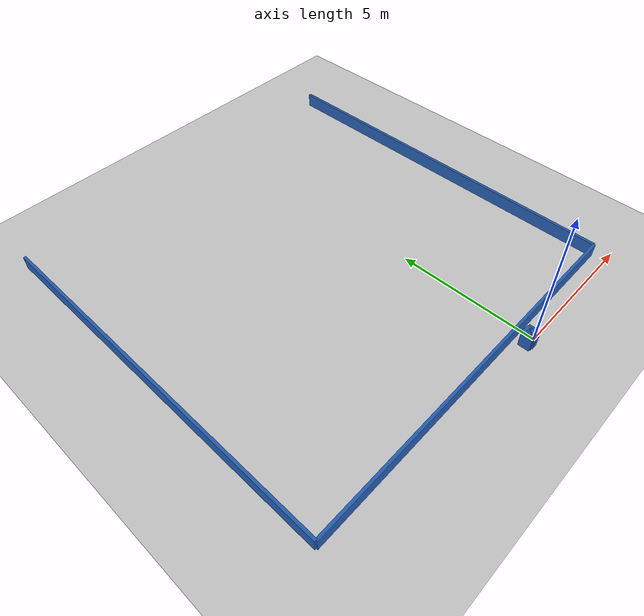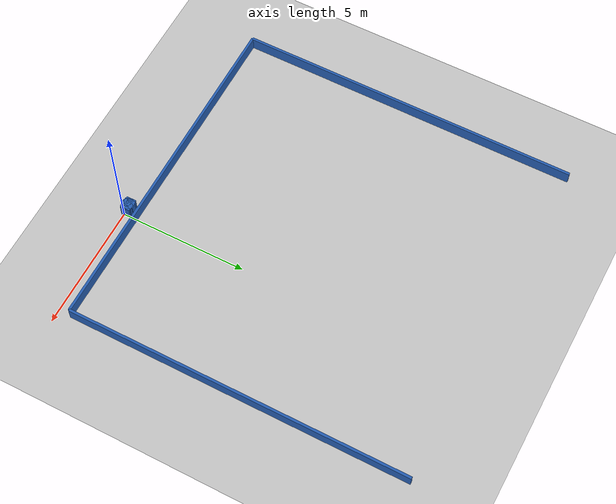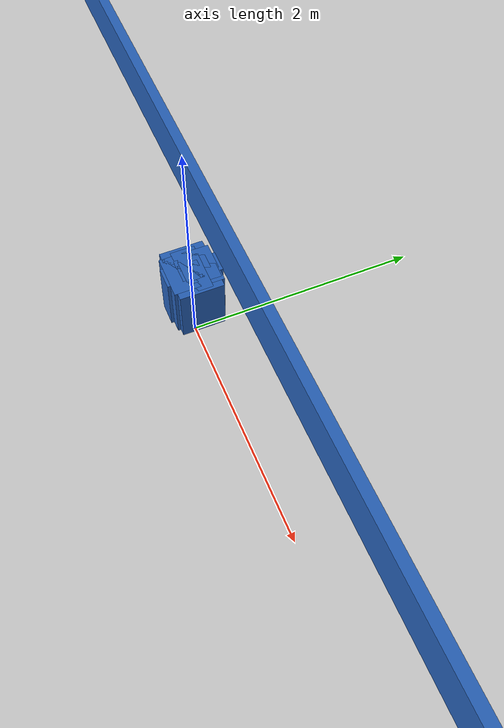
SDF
<?xml version="1.0" ?>
    <sdf version="1.5">
      <world name="default">
        <!-- A global light source -->
        <include>
          <uri>model://sun</uri>
        </include>
        <!-- A ground plane -->
        <include>
          <uri>model://ground_plane</uri>
        </include>

    <model name='libopen_space_final_T2B_123_20'>
      <static>1</static>
      <pose frame=''>-0.225000 0.075000 0.000000 0.000000 0.000000 0.000000</pose>
      <link name='link'>
        <inertial>
          <mass>1</mass>
          <inertia>
            <ixx>0.145833</ixx>
            <ixy>0</ixy>
            <ixz>0</ixz>
            <iyy>0.145833</iyy>
            <iyz>0</iyz>
            <izz>0.125</izz>
          </inertia>
        </inertial>
        <collision name='collision'>
          <geometry>
            <box>
              <size>0.19 0.48 1</size>
            </box>
          </geometry>
          <max_contacts>10</max_contacts>
          <surface>
            <contact>
              <ode/>
            </contact>
            <bounce/>
            <friction>
              <torsional>
                <ode/>
              </torsional>
              <ode/>
            </friction>
          </surface>
        </collision>
        <visual name='visual'>
          <geometry>
            <box>
              <size>0.19 0.48 1</size>
            </box>
          </geometry>
	    <material>
              <ambient>0.152000 0.379000 0.720000 1</ambient>
	      <diffuse>0.152000 0.379000 0.720000 1</diffuse>
          </material>
          <material>
            <script>
              <name>Gazebo/Grey</name>
              <uri>file://media/materials/scripts/gazebo.material</uri>
            </script>
          </material>
        </visual>
        <self_collide>0</self_collide>
        <kinematic>0</kinematic>
        <gravity>1</gravity>
      </link>
      <plugin name='libopen_space_final_T2B_123_20' filename='libopen_space_final_T2B_123_20.so'/>
    </model>

    <model name='libopen_space_final_T2B_105_8'>
      <static>1</static>
      <pose frame=''>-0.225000 0.075000 0.000000 0.000000 0.000000 0.000000</pose>
      <link name='link'>
        <inertial>
          <mass>1</mass>
          <inertia>
            <ixx>0.145833</ixx>
            <ixy>0</ixy>
            <ixz>0</ixz>
            <iyy>0.145833</iyy>
            <iyz>0</iyz>
            <izz>0.125</izz>
          </inertia>
        </inertial>
        <collision name='collision'>
          <geometry>
            <box>
              <size>0.50 0.38 1</size>
            </box>
          </geometry>
          <max_contacts>10</max_contacts>
          <surface>
            <contact>
              <ode/>
            </contact>
            <bounce/>
            <friction>
              <torsional>
                <ode/>
              </torsional>
              <ode/>
            </friction>
          </surface>
        </collision>
        <visual name='visual'>
          <geometry>
            <box>
              <size>0.50 0.38 1</size>
            </box>
          </geometry>
	    <material>
              <ambient>0.152000 0.379000 0.720000 1</ambient>
	      <diffuse>0.152000 0.379000 0.720000 1</diffuse>
          </material>
          <material>
            <script>
              <name>Gazebo/Grey</name>
              <uri>file://media/materials/scripts/gazebo.material</uri>
            </script>
          </material>
        </visual>
        <self_collide>0</self_collide>
        <kinematic>0</kinematic>
        <gravity>1</gravity>
      </link>
      <plugin name='libopen_space_final_T2B_105_8' filename='libopen_space_final_T2B_105_8.so'/>
    </model>

    <model name='libopen_space_final_T2B_118_43'>
      <static>1</static>
      <pose frame=''>-0.225000 0.075000 0.000000 0.000000 0.000000 0.000000</pose>
      <link name='link'>
        <inertial>
          <mass>1</mass>
          <inertia>
            <ixx>0.145833</ixx>
            <ixy>0</ixy>
            <ixz>0</ixz>
            <iyy>0.145833</iyy>
            <iyz>0</iyz>
            <izz>0.125</izz>
          </inertia>
        </inertial>
        <collision name='collision'>
          <geometry>
            <box>
              <size>0.16 0.15 1</size>
            </box>
          </geometry>
          <max_contacts>10</max_contacts>
          <surface>
            <contact>
              <ode/>
            </contact>
            <bounce/>
            <friction>
              <torsional>
                <ode/>
              </torsional>
              <ode/>
            </friction>
          </surface>
        </collision>
        <visual name='visual'>
          <geometry>
            <box>
              <size>0.16 0.15 1</size>
            </box>
          </geometry>
	    <material>
              <ambient>0.152000 0.379000 0.720000 1</ambient>
	      <diffuse>0.152000 0.379000 0.720000 1</diffuse>
          </material>
          <material>
            <script>
              <name>Gazebo/Grey</name>
              <uri>file://media/materials/scripts/gazebo.material</uri>
            </script>
          </material>
        </visual>
        <self_collide>0</self_collide>
        <kinematic>0</kinematic>
        <gravity>1</gravity>
      </link>
      <plugin name='libopen_space_final_T2B_118_43' filename='libopen_space_final_T2B_118_43.so'/>
    </model>

    <model name='libopen_space_final_T2B_83_61'>
      <static>1</static>
      <pose frame=''>-0.225000 0.075000 0.000000 0.000000 0.000000 0.000000</pose>
      <link name='link'>
        <inertial>
          <mass>1</mass>
          <inertia>
            <ixx>0.145833</ixx>
            <ixy>0</ixy>
            <ixz>0</ixz>
            <iyy>0.145833</iyy>
            <iyz>0</iyz>
            <izz>0.125</izz>
          </inertia>
        </inertial>
        <collision name='collision'>
          <geometry>
            <box>
              <size>0.45 0.21 1</size>
            </box>
          </geometry>
          <max_contacts>10</max_contacts>
          <surface>
            <contact>
              <ode/>
            </contact>
            <bounce/>
            <friction>
              <torsional>
                <ode/>
              </torsional>
              <ode/>
            </friction>
          </surface>
        </collision>
        <visual name='visual'>
          <geometry>
            <box>
              <size>0.45 0.21 1</size>
            </box>
          </geometry>
	    <material>
              <ambient>0.152000 0.379000 0.720000 1</ambient>
	      <diffuse>0.152000 0.379000 0.720000 1</diffuse>
          </material>
          <material>
            <script>
              <name>Gazebo/Grey</name>
              <uri>file://media/materials/scripts/gazebo.material</uri>
            </script>
          </material>
        </visual>
        <self_collide>0</self_collide>
        <kinematic>0</kinematic>
        <gravity>1</gravity>
      </link>
      <plugin name='libopen_space_final_T2B_83_61' filename='libopen_space_final_T2B_83_61.so'/>
    </model>

    <model name='libopen_space_final_T2B_81_89'>
      <static>1</static>
      <pose frame=''>-0.225000 0.075000 0.000000 0.000000 0.000000 0.000000</pose>
      <link name='link'>
        <inertial>
          <mass>1</mass>
          <inertia>
            <ixx>0.145833</ixx>
            <ixy>0</ixy>
            <ixz>0</ixz>
            <iyy>0.145833</iyy>
            <iyz>0</iyz>
            <izz>0.125</izz>
          </inertia>
        </inertial>
        <collision name='collision'>
          <geometry>
            <box>
              <size>0.18 0.21 1</size>
            </box>
          </geometry>
          <max_contacts>10</max_contacts>
          <surface>
            <contact>
              <ode/>
            </contact>
            <bounce/>
            <friction>
              <torsional>
                <ode/>
              </torsional>
              <ode/>
            </friction>
          </surface>
        </collision>
        <visual name='visual'>
          <geometry>
            <box>
              <size>0.18 0.21 1</size>
            </box>
          </geometry>
	    <material>
              <ambient>0.152000 0.379000 0.720000 1</ambient>
	      <diffuse>0.152000 0.379000 0.720000 1</diffuse>
          </material>
          <material>
            <script>
              <name>Gazebo/Grey</name>
              <uri>file://media/materials/scripts/gazebo.material</uri>
            </script>
          </material>
        </visual>
        <self_collide>0</self_collide>
        <kinematic>0</kinematic>
        <gravity>1</gravity>
      </link>
      <plugin name='libopen_space_final_T2B_81_89' filename='libopen_space_final_T2B_81_89.so'/>
    </model>

    <model name='libopen_space_final_T2B_94_31'>
      <static>1</static>
      <pose frame=''>-0.225000 0.075000 0.000000 0.000000 0.000000 0.000000</pose>
      <link name='link'>
        <inertial>
          <mass>1</mass>
          <inertia>
            <ixx>0.145833</ixx>
            <ixy>0</ixy>
            <ixz>0</ixz>
            <iyy>0.145833</iyy>
            <iyz>0</iyz>
            <izz>0.125</izz>
          </inertia>
        </inertial>
        <collision name='collision'>
          <geometry>
            <box>
              <size>0.38 0.43 1</size>
            </box>
          </geometry>
          <max_contacts>10</max_contacts>
          <surface>
            <contact>
              <ode/>
            </contact>
            <bounce/>
            <friction>
              <torsional>
                <ode/>
              </torsional>
              <ode/>
            </friction>
          </surface>
        </collision>
        <visual name='visual'>
          <geometry>
            <box>
              <size>0.38 0.43 1</size>
            </box>
          </geometry>
	    <material>
              <ambient>0.152000 0.379000 0.720000 1</ambient>
	      <diffuse>0.152000 0.379000 0.720000 1</diffuse>
          </material>
          <material>
            <script>
              <name>Gazebo/Grey</name>
              <uri>file://media/materials/scripts/gazebo.material</uri>
            </script>
          </material>
        </visual>
        <self_collide>0</self_collide>
        <kinematic>0</kinematic>
        <gravity>1</gravity>
      </link>
      <plugin name='libopen_space_final_T2B_94_31' filename='libopen_space_final_T2B_94_31.so'/>
    </model>

    <model name='libopen_space_final_T2B_148_40'>
      <static>1</static>
      <pose frame=''>-0.225000 0.075000 0.000000 0.000000 0.000000 0.000000</pose>
      <link name='link'>
        <inertial>
          <mass>1</mass>
          <inertia>
            <ixx>0.145833</ixx>
            <ixy>0</ixy>
            <ixz>0</ixz>
            <iyy>0.145833</iyy>
            <iyz>0</iyz>
            <izz>0.125</izz>
          </inertia>
        </inertial>
        <collision name='collision'>
          <geometry>
            <box>
              <size>0.28 0.31 1</size>
            </box>
          </geometry>
          <max_contacts>10</max_contacts>
          <surface>
            <contact>
              <ode/>
            </contact>
            <bounce/>
            <friction>
              <torsional>
                <ode/>
              </torsional>
              <ode/>
            </friction>
          </surface>
        </collision>
        <visual name='visual'>
          <geometry>
            <box>
              <size>0.28 0.31 1</size>
            </box>
          </geometry>
	    <material>
              <ambient>0.152000 0.379000 0.720000 1</ambient>
	      <diffuse>0.152000 0.379000 0.720000 1</diffuse>
          </material>
          <material>
            <script>
              <name>Gazebo/Grey</name>
              <uri>file://media/materials/scripts/gazebo.material</uri>
            </script>
          </material>
        </visual>
        <self_collide>0</self_collide>
        <kinematic>0</kinematic>
        <gravity>1</gravity>
      </link>
      <plugin name='libopen_space_final_T2B_148_40' filename='libopen_space_final_T2B_148_40.so'/>
    </model>

    <model name='libopen_space_final_T2B_67_47'>
      <static>1</static>
      <pose frame=''>-0.225000 0.075000 0.000000 0.000000 0.000000 0.000000</pose>
      <link name='link'>
        <inertial>
          <mass>1</mass>
          <inertia>
            <ixx>0.145833</ixx>
            <ixy>0</ixy>
            <ixz>0</ixz>
            <iyy>0.145833</iyy>
            <iyz>0</iyz>
            <izz>0.125</izz>
          </inertia>
        </inertial>
        <collision name='collision'>
          <geometry>
            <box>
              <size>0.27 0.22 1</size>
            </box>
          </geometry>
          <max_contacts>10</max_contacts>
          <surface>
            <contact>
              <ode/>
            </contact>
            <bounce/>
            <friction>
              <torsional>
                <ode/>
              </torsional>
              <ode/>
            </friction>
          </surface>
        </collision>
        <visual name='visual'>
          <geometry>
            <box>
              <size>0.27 0.22 1</size>
            </box>
          </geometry>
	    <material>
              <ambient>0.152000 0.379000 0.720000 1</ambient>
	      <diffuse>0.152000 0.379000 0.720000 1</diffuse>
          </material>
          <material>
            <script>
              <name>Gazebo/Grey</name>
              <uri>file://media/materials/scripts/gazebo.material</uri>
            </script>
          </material>
        </visual>
        <self_collide>0</self_collide>
        <kinematic>0</kinematic>
        <gravity>1</gravity>
      </link>
      <plugin name='libopen_space_final_T2B_67_47' filename='libopen_space_final_T2B_67_47.so'/>
    </model>

    <model name='libopen_space_final_T2B_64_52'>
      <static>1</static>
      <pose frame=''>-0.225000 0.075000 0.000000 0.000000 0.000000 0.000000</pose>
      <link name='link'>
        <inertial>
          <mass>1</mass>
          <inertia>
            <ixx>0.145833</ixx>
            <ixy>0</ixy>
            <ixz>0</ixz>
            <iyy>0.145833</iyy>
            <iyz>0</iyz>
            <izz>0.125</izz>
          </inertia>
        </inertial>
        <collision name='collision'>
          <geometry>
            <box>
              <size>0.31 0.41 1</size>
            </box>
          </geometry>
          <max_contacts>10</max_contacts>
          <surface>
            <contact>
              <ode/>
            </contact>
            <bounce/>
            <friction>
              <torsional>
                <ode/>
              </torsional>
              <ode/>
            </friction>
          </surface>
        </collision>
        <visual name='visual'>
          <geometry>
            <box>
              <size>0.31 0.41 1</size>
            </box>
          </geometry>
	    <material>
              <ambient>0.152000 0.379000 0.720000 1</ambient>
	      <diffuse>0.152000 0.379000 0.720000 1</diffuse>
          </material>
          <material>
            <script>
              <name>Gazebo/Grey</name>
              <uri>file://media/materials/scripts/gazebo.material</uri>
            </script>
          </material>
        </visual>
        <self_collide>0</self_collide>
        <kinematic>0</kinematic>
        <gravity>1</gravity>
      </link>
      <plugin name='libopen_space_final_T2B_64_52' filename='libopen_space_final_T2B_64_52.so'/>
    </model>

    <model name='libopen_space_final_T2B_119_99'>
      <static>1</static>
      <pose frame=''>-0.225000 0.075000 0.000000 0.000000 0.000000 0.000000</pose>
      <link name='link'>
        <inertial>
          <mass>1</mass>
          <inertia>
            <ixx>0.145833</ixx>
            <ixy>0</ixy>
            <ixz>0</ixz>
            <iyy>0.145833</iyy>
            <iyz>0</iyz>
            <izz>0.125</izz>
          </inertia>
        </inertial>
        <collision name='collision'>
          <geometry>
            <box>
              <size>0.22 0.16 1</size>
            </box>
          </geometry>
          <max_contacts>10</max_contacts>
          <surface>
            <contact>
              <ode/>
            </contact>
            <bounce/>
            <friction>
              <torsional>
                <ode/>
              </torsional>
              <ode/>
            </friction>
          </surface>
        </collision>
        <visual name='visual'>
          <geometry>
            <box>
              <size>0.22 0.16 1</size>
            </box>
          </geometry>
	    <material>
              <ambient>0.152000 0.379000 0.720000 1</ambient>
	      <diffuse>0.152000 0.379000 0.720000 1</diffuse>
          </material>
          <material>
            <script>
              <name>Gazebo/Grey</name>
              <uri>file://media/materials/scripts/gazebo.material</uri>
            </script>
          </material>
        </visual>
        <self_collide>0</self_collide>
        <kinematic>0</kinematic>
        <gravity>1</gravity>
      </link>
      <plugin name='libopen_space_final_T2B_119_99' filename='libopen_space_final_T2B_119_99.so'/>
    </model>

        <model name='bottom_wall'>
          <static>1</static>
          <pose frame=''>-2.25 0.5 0.000000 0.000000 0.000000 1.57079632</pose>
          <link name='link'>
            <inertial>
            <mass>1</mass>
            <inertia>
              <ixx>0.145833</ixx>
              <ixy>0</ixy>
              <ixz>0</ixz>
              <iyy>0.145833</iyy>
              <iyz>0</iyz>
              <izz>0.125</izz>
            </inertia>
            </inertial>
            <collision name='collision'>
            <geometry>
              <box>
              <size>0.1 13.5 1</size>
              </box>
            </geometry>
            <max_contacts>10</max_contacts>
            <surface>
              <contact>
              <ode/>
              </contact>
              <bounce/>
              <friction>
              <torsional>
                <ode/>
              </torsional>
              <ode/>
              </friction>
            </surface>
            </collision>
            <visual name='visual'>
            <geometry>
              <box>
              <size>0.1 13.5 1</size>
              </box>
            </geometry>
            <material>
              <ambient>0.152000 0.379000 0.720000 1</ambient>
            <diffuse>0.152000 0.379000 0.720000 1</diffuse>
            </material>
            <material>
              <script>
              <name>Gazebo/Grey</name>
              <uri>file://media/materials/scripts/gazebo.material</uri>
              </script>
            </material>
            </visual>
            <self_collide>0</self_collide>
            <kinematic>0</kinematic>
            <gravity>1</gravity>
          </link>
        </model>

        <model name='left_wall'>
          <static>1</static>
          <pose frame=''>-9 7.25 0.000000 0.000000 0.000000 0.000000</pose>
          <link name='link'>
            <inertial>
            <mass>1</mass>
            <inertia>
              <ixx>0.145833</ixx>
              <ixy>0</ixy>
              <ixz>0</ixz>
              <iyy>0.145833</iyy>
              <iyz>0</iyz>
              <izz>0.125</izz>
            </inertia>
            </inertial>
            <collision name='collision'>
            <geometry>
              <box>
              <size>0.1 13.5 1</size>
              </box>
            </geometry>
            <max_contacts>10</max_contacts>
            <surface>
              <contact>
              <ode/>
              </contact>
              <bounce/>
              <friction>
              <torsional>
                <ode/>
              </torsional>
              <ode/>
              </friction>
            </surface>
            </collision>
            <visual name='visual'>
            <geometry>
              <box>
              <size>0.1 13.5 1</size>
              </box>
            </geometry>
            <material>
              <ambient>0.152000 0.379000 0.720000 1</ambient>
            <diffuse>0.152000 0.379000 0.720000 1</diffuse>
            </material>
            <material>
              <script>
              <name>Gazebo/Grey</name>
              <uri>file://media/materials/scripts/gazebo.material</uri>
              </script>
            </material>
            </visual>
            <self_collide>0</self_collide>
            <kinematic>0</kinematic>
            <gravity>1</gravity>
          </link>
        </model>

        <model name='right_wall'>
          <static>1</static>
          <pose frame=''>4.5 7.25 0.000000 0.000000 0.000000 0.000000</pose>
          <link name='link'>
            <inertial>
            <mass>1</mass>
            <inertia>
              <ixx>0.145833</ixx>
              <ixy>0</ixy>
              <ixz>0</ixz>
              <iyy>0.145833</iyy>
              <iyz>0</iyz>
              <izz>0.125</izz>
            </inertia>
            </inertial>
            <collision name='collision'>
            <geometry>
              <box>
              <size>0.1 13.5 1</size>
              </box>
            </geometry>
            <max_contacts>10</max_contacts>
            <surface>
              <contact>
              <ode/>
              </contact>
              <bounce/>
              <friction>
              <torsional>
                <ode/>
              </torsional>
              <ode/>
              </friction>
            </surface>
            </collision>
            <visual name='visual'>
            <geometry>
              <box>
              <size>0.1 13.5 1</size>
              </box>
            </geometry>
            <material>
              <ambient>0.152000 0.379000 0.720000 1</ambient>
            <diffuse>0.152000 0.379000 0.720000 1</diffuse>
            </material>
            <material>
              <script>
              <name>Gazebo/Grey</name>
              <uri>file://media/materials/scripts/gazebo.material</uri>
              </script>
            </material>
            </visual>
            <self_collide>0</self_collide>
            <kinematic>0</kinematic>
            <gravity>1</gravity>
          </link>
        </model>

      </world>
    </sdf>"
